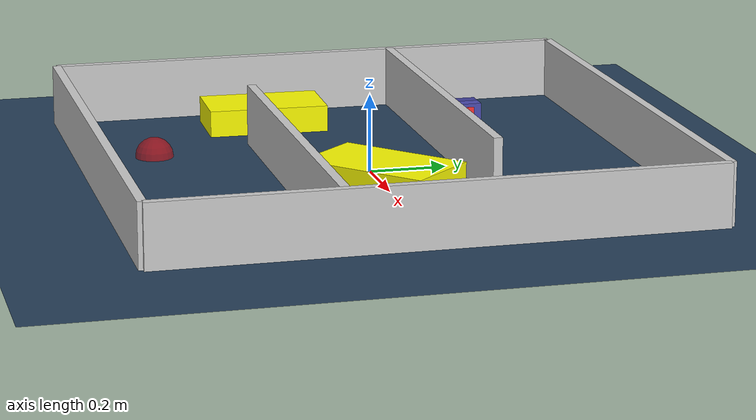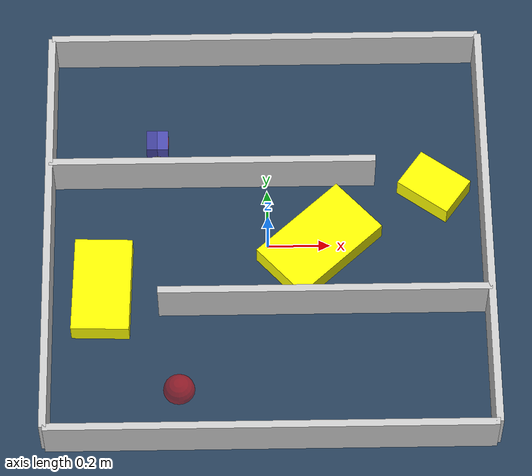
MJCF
<?xml version='1.0' encoding='utf-8'?>
<mujoco model="generated_environment">
  <option timestep="0.002" integrator="implicitfast" cone="elliptic" iterations="100" gravity="0 0 -9.81" />
  <default>
    <geom density="1" />
  </default>
  <asset>
    <texture builtin="gradient" height="3072" rgb1="0.3 0.5 0.7" rgb2="0 0 0" type="skybox" width="512" />
    <texture builtin="checker" height="300" mark="edge" markrgb="0.8 0.8 0.8" name="groundplane" rgb1="0.2 0.3 0.4" rgb2="0.1 0.2 0.3" type="2d" width="300" />
    <material name="groundplane" reflectance="0.2" texrepeat="5 5" texture="groundplane" texuniform="true" />
    <material name="robot" rgba="1.0 1.0 0.0 1.0" />
  </asset>
  <worldbody>
    <light dir="0 0 -1" directional="true" pos="0 0 1.5" />
    <geom condim="4" friction="0.5 0.005 0.001" material="groundplane" name="floor" size="0 0 0.05" type="plane" />
    <body name="walls">
      <geom name="wall_1" condim="4" pos="-0.699000 0.000000 0.080000" rgba="0.800000011920929 0.800000011920929 0.800000011920929 1.0" size="0.011650 0.699000 0.080000" type="box" />
      <geom name="wall_2" condim="4" pos="0.699000 0.000000 0.080000" rgba="0.800000011920929 0.800000011920929 0.800000011920929 1.0" size="0.011650 0.699000 0.080000" type="box" />
      <geom name="wall_3" condim="4" pos="0.000000 -0.699000 0.080000" rgba="0.800000011920929 0.800000011920929 0.800000011920929 1.0" size="0.699000 0.011650 0.080000" type="box" />
      <geom name="wall_4" condim="4" pos="0.000000 0.699000 0.080000" rgba="0.800000011920929 0.800000011920929 0.800000011920929 1.0" size="0.699000 0.011650 0.080000" type="box" />
      <geom name="wall_5" condim="4" pos="0.174750 -0.233000 0.080000" rgba="0.800000011920929 0.800000011920929 0.800000011920929 1.0" size="0.524250 0.011650 0.080000" type="box" />
      <geom name="wall_6" condim="4" pos="-0.174750 0.233000 0.080000" rgba="0.800000011920929 0.800000011920929 0.800000011920929 1.0" size="0.524250 0.011650 0.080000" type="box" />
    </body>
    <body name="car" pos="-0.35499999999999987 0.3550000000000001 0.010000">
      <freejoint name="car_freejoint" />
      <inertial pos="0.000000 0 0.037500" mass="0.350000" diaginertia="0.000266 0.000266 0.000286" />
      <geom name="front_chassis_collision" type="box" pos="0.017500 0 0.037500" size="0.017500 0.035000 0.032500" rgba="0.3 0.3 0.7 1" />
      <geom name="rear_chassis_collision" type="box" pos="-0.017500 0 0.037500" size="0.017500 0.035000 0.032500" rgba="0.25 0.25 0.6 1" />
      <geom name="front_marker" type="box" pos="0.034000 0 0.050500" size="0.002000 0.015000 0.010000" rgba="1.0 0.2 0.2 1" contype="0" conaffinity="0" />
      <body name="rear_support_body" pos="-0.030000 0.000000 0.002500">
        <joint name="rear_caster_joint" type="ball" damping="0.0001" />
        <inertial pos="0 0 0" mass="0.025000" diaginertia="0.000001 0.000001 0.000001" />
        <geom name="rear_support" type="sphere" pos="0 0 0" size="0.002500" friction="0.000000 0.000000 0.000000" rgba="0.7 0.1 0.1 1" />
      </body>
      <body name="front_support_body" pos="0.030000 0.000000 0.002500">
        <joint name="front_caster_joint" type="ball" damping="0.0001" />
        <inertial pos="0 0 0" mass="0.025000" diaginertia="0.000001 0.000001 0.000001" />
        <geom name="front_support" type="sphere" pos="0 0 0" size="0.002500" friction="0.000000 0.000000 0.000000" rgba="0.1 0.7 0.1 1" />
      </body>
      <body name="left_wheel" pos="0.000000 0.037500 0.015000">
        <inertial pos="0 0 0" mass="0.050000" diaginertia="0.000003 0.000006 0.000003" />
        <joint name="left_wheel_joint" type="hinge" axis="0 1 0" />
        <geom name="left_wheel_collision" type="cylinder" size="0.015000 0.000500" euler="90 0 0" rgba="0.1 0.1 0.1 1" />
      </body>
      <body name="right_wheel" pos="0.000000 -0.037500 0.015000">
        <inertial pos="0 0 0" mass="0.050000" diaginertia="0.000003 0.000006 0.000003" />
        <joint name="right_wheel_joint" type="hinge" axis="0 1 0" />
        <geom name="right_wheel_collision" type="cylinder" size="0.015000 0.000500" euler="90 0 0" rgba="0.1 0.1 0.1 1" />
      </body>
    </body>
    <body name="obstacle_0_movable">
      <geom name="obstacle_0_movable" condim="4" pos="-0.5289161064679531 -0.16349859838626235 0.035" euler="0 0 178.34531368586207" friction="0.0 0.005 0.001" rgba="1 1 0 1" size="0.09196097978062939 0.15923130846155883 0.035" type="box" mass="0.1" />
      <joint type="free" />
    </body>
    <body name="obstacle_1_movable">
      <geom name="obstacle_1_movable" condim="4" pos="0.5396192787664029 0.19309066904819205 0.035" euler="0 0 324.0814388254546" friction="0.0 0.005 0.001" rgba="1 1 0 1" size="0.0955493822646808 0.06974229324693847 0.035" type="box" mass="0.1" />
      <joint type="free" />
    </body>
    <body name="obstacle_2_movable">
      <geom name="obstacle_2_movable" condim="4" pos="0.16447549847201892 -0.00748467928053953 0.035" euler="0 0 132.39763579803943" friction="0.0 0.005 0.001" rgba="1 1 0 1" size="0.10613626245839412 0.17662642875233808 0.035" type="box" mass="0.1" />
      <joint type="free" />
    </body>
    <site name="goal" type="sphere" pos="-0.28500000000000003 -0.505 0.0" size="0.05" rgba="1 0 0 0.5" />
  </worldbody>
  <actuator>
    <velocity name="left_wheel_drive" joint="left_wheel_joint" ctrlrange="-25.000000 25.000000" kv="0.750000" forcerange="-0.300000 0.300000" />
    <velocity name="right_wheel_drive" joint="right_wheel_joint" ctrlrange="-25.000000 25.000000" kv="0.750000" forcerange="-0.300000 0.300000" />
  </actuator>
</mujoco>
